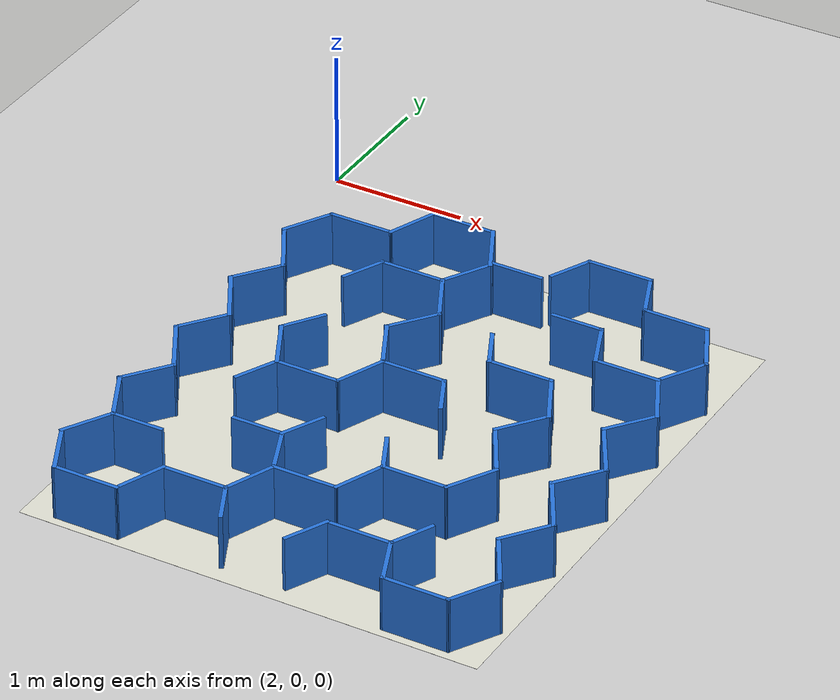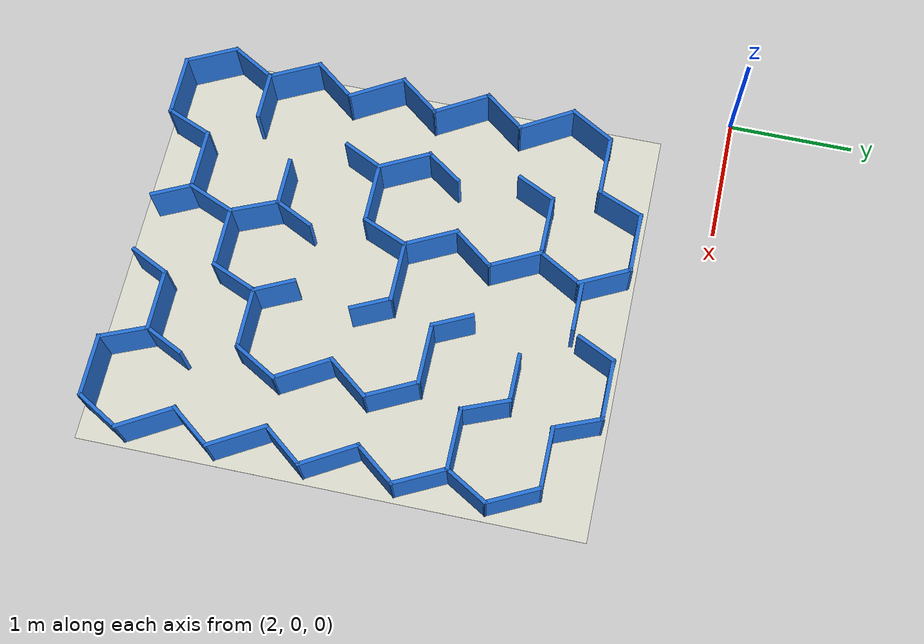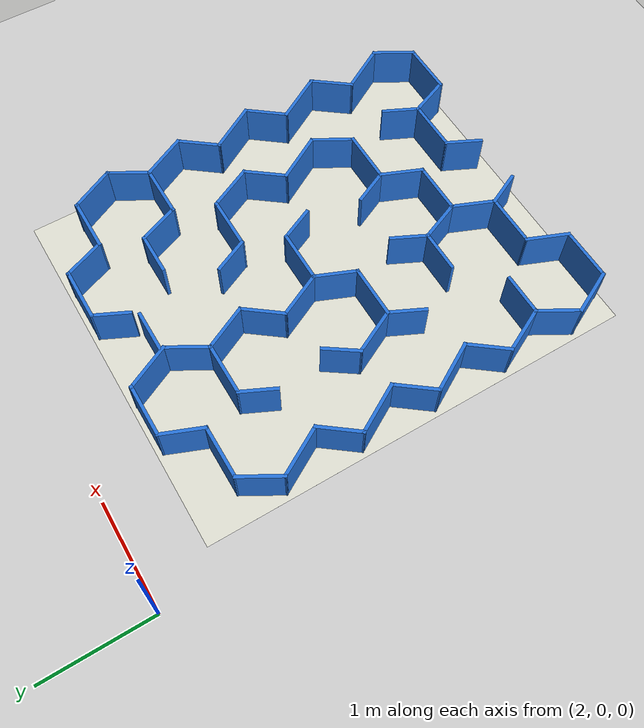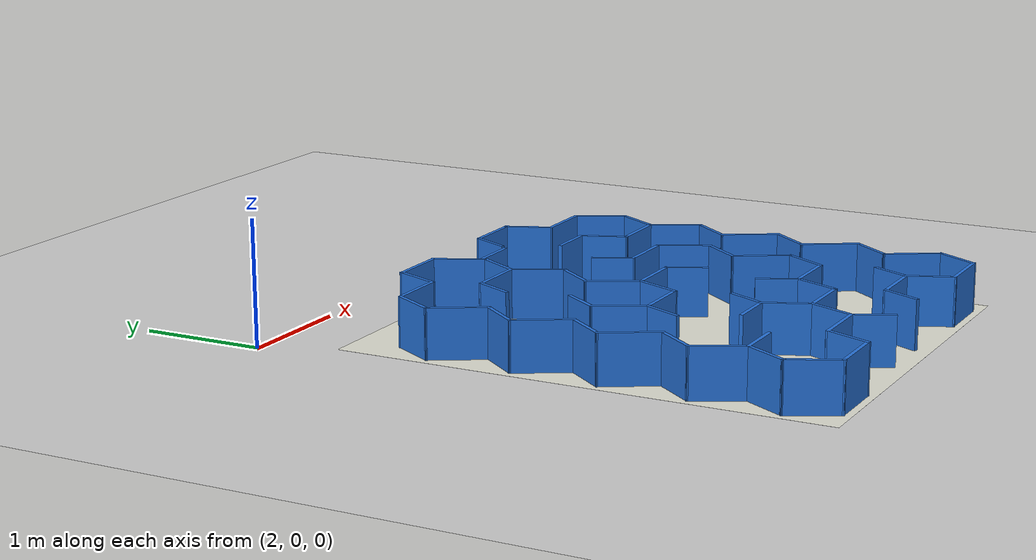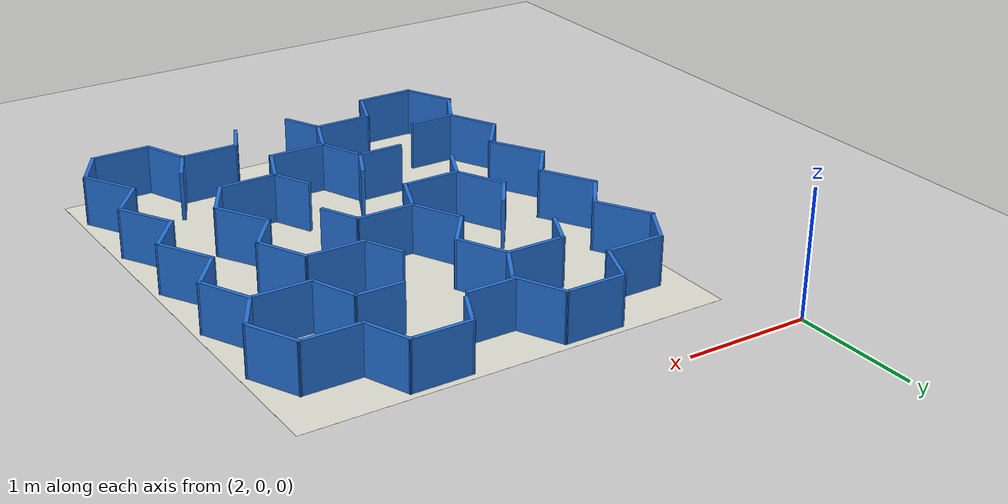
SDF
<?xml version="1.0" ?>
<sdf version="1.10">
<world name="nhom8_maze_sigma_1">
  <physics name="8ms" type="ignored">
    <max_step_size>0.008</max_step_size>
    <real_time_factor>1.0</real_time_factor>
  </physics>
  <plugin filename="gz-sim-physics-system"   name="gz::sim::systems::Physics"/>
  <plugin filename="gz-sim-user-commands-system" name="gz::sim::systems::UserCommands"/>
  <plugin filename="gz-sim-scene-broadcaster-system" name="gz::sim::systems::SceneBroadcaster"/>
  <plugin filename="gz-sim-sensors-system" name="gz::sim::systems::Sensors">
    <render_engine>ogre2</render_engine>
  </plugin>

  <light type="directional" name="sun">
    <cast_shadows>true</cast_shadows>
    <pose>0 0 10 0 0 0</pose>
    <diffuse>1 1 1 1</diffuse>
    <specular>0.5 0.5 0.5 1</specular>
    <attenuation><range>1000</range><constant>0.9</constant>
      <linear>0.01</linear><quadratic>0.001</quadratic></attenuation>
    <direction>-0.5 0.1 -0.9</direction>
  </light>

  <model name="ground_plane">
    <static>true</static>
    <link name="link">
      <collision name="collision">
        <geometry><plane><normal>0 0 1</normal><size>50.0 50.0</size></plane></geometry>
        <surface><friction><ode><mu>40</mu></ode></friction></surface>
      </collision>
      <visual name="visual">
        <geometry><plane><normal>0 0 1</normal><size>50.0 50.0</size></plane></geometry>
        <material>
          <ambient>0.8 0.8 0.8 1</ambient><diffuse>0.8 0.8 0.8 1</diffuse>
          <specular>0.8 0.8 0.8 1</specular>
        </material>
      </visual>
    </link>
  </model>

  <!--  MAZE sigma_1 (family sigma)                -->
  <!--  walls: 69   wall bbox (local): (-1.6468, -1.9402, 1.6477, 1.9489)   -->
  <!--  openings: entrance=north@(0.003,1.589) hw=0.168  exit=south@(0.003,-1.937) hw=0.168   -->
  <!--  start (local): (0.1032, 1.3098) yaw=-1.5724 rad  -->
  <!--  placement center: (3.9650, -2.5350)   -->

    <model name="wall_000">
      <static>true</static>
      <pose>3.355700 -0.600000 0.2000 0 0 0.000000</pose>
      <link name="link">
        <collision name="col">
          <geometry><box><size>0.4974 0.0300 0.4000</size></box></geometry>
        </collision>
        <visual name="vis">
          <geometry><box><size>0.4974 0.0300 0.4000</size></box></geometry>
          <material><ambient>0.15 0.45 0.85 1</ambient><diffuse>0.15 0.45 0.85 1</diffuse></material>
        </visual>
      </link>
    </model>

    <model name="wall_001">
      <static>true</static>
      <pose>4.574850 -0.600000 0.2000 0 0 0.000000</pose>
      <link name="link">
        <collision name="col">
          <geometry><box><size>0.4965 0.0300 0.4000</size></box></geometry>
        </collision>
        <visual name="vis">
          <geometry><box><size>0.4965 0.0300 0.4000</size></box></geometry>
          <material><ambient>0.15 0.45 0.85 1</ambient><diffuse>0.15 0.45 0.85 1</diffuse></material>
        </visual>
      </link>
    </model>

    <model name="wall_002">
      <static>true</static>
      <pose>2.749700 -0.949300 0.2000 0 0 0.000000</pose>
      <link name="link">
        <collision name="col">
          <geometry><box><size>0.4950 0.0300 0.4000</size></box></geometry>
        </collision>
        <visual name="vis">
          <geometry><box><size>0.4950 0.0300 0.4000</size></box></geometry>
          <material><ambient>0.15 0.45 0.85 1</ambient><diffuse>0.15 0.45 0.85 1</diffuse></material>
        </visual>
      </link>
    </model>

    <model name="wall_003">
      <static>true</static>
      <pose>5.182250 -0.949300 0.2000 0 0 0.000000</pose>
      <link name="link">
        <collision name="col">
          <geometry><box><size>0.4973 0.0300 0.4000</size></box></geometry>
        </collision>
        <visual name="vis">
          <geometry><box><size>0.4973 0.0300 0.4000</size></box></geometry>
          <material><ambient>0.15 0.45 0.85 1</ambient><diffuse>0.15 0.45 0.85 1</diffuse></material>
        </visual>
      </link>
    </model>

    <model name="wall_004">
      <static>true</static>
      <pose>3.355550 -1.303800 0.2000 0 0 0.000000</pose>
      <link name="link">
        <collision name="col">
          <geometry><box><size>0.4963 0.0300 0.4000</size></box></geometry>
        </collision>
        <visual name="vis">
          <geometry><box><size>0.4963 0.0300 0.4000</size></box></geometry>
          <material><ambient>0.15 0.45 0.85 1</ambient><diffuse>0.15 0.45 0.85 1</diffuse></material>
        </visual>
      </link>
    </model>

    <model name="wall_005">
      <static>true</static>
      <pose>4.626000 -1.303800 0.2000 0 0 0.000000</pose>
      <link name="link">
        <collision name="col">
          <geometry><box><size>0.3938 0.0300 0.4000</size></box></geometry>
        </collision>
        <visual name="vis">
          <geometry><box><size>0.3938 0.0300 0.4000</size></box></geometry>
          <material><ambient>0.15 0.45 0.85 1</ambient><diffuse>0.15 0.45 0.85 1</diffuse></material>
        </visual>
      </link>
    </model>

    <model name="wall_006">
      <static>true</static>
      <pose>5.180900 -1.650000 0.2000 0 0 0.000000</pose>
      <link name="link">
        <collision name="col">
          <geometry><box><size>0.4964 0.0300 0.4000</size></box></geometry>
        </collision>
        <visual name="vis">
          <geometry><box><size>0.4964 0.0300 0.4000</size></box></geometry>
          <material><ambient>0.15 0.45 0.85 1</ambient><diffuse>0.15 0.45 0.85 1</diffuse></material>
        </visual>
      </link>
    </model>

    <model name="wall_007">
      <static>true</static>
      <pose>4.574650 -2.004700 0.2000 0 0 0.000000</pose>
      <link name="link">
        <collision name="col">
          <geometry><box><size>0.4953 0.0300 0.4000</size></box></geometry>
        </collision>
        <visual name="vis">
          <geometry><box><size>0.4953 0.0300 0.4000</size></box></geometry>
          <material><ambient>0.15 0.45 0.85 1</ambient><diffuse>0.15 0.45 0.85 1</diffuse></material>
        </visual>
      </link>
    </model>

    <model name="wall_008">
      <static>true</static>
      <pose>3.966050 -2.359100 0.2000 0 0 0.000000</pose>
      <link name="link">
        <collision name="col">
          <geometry><box><size>0.4941 0.0300 0.4000</size></box></geometry>
        </collision>
        <visual name="vis">
          <geometry><box><size>0.4941 0.0300 0.4000</size></box></geometry>
          <material><ambient>0.15 0.45 0.85 1</ambient><diffuse>0.15 0.45 0.85 1</diffuse></material>
        </visual>
      </link>
    </model>

    <model name="wall_009">
      <static>true</static>
      <pose>3.358350 -2.705300 0.2000 0 0 0.000000</pose>
      <link name="link">
        <collision name="col">
          <geometry><box><size>0.4953 0.0300 0.4000</size></box></geometry>
        </collision>
        <visual name="vis">
          <geometry><box><size>0.4953 0.0300 0.4000</size></box></geometry>
          <material><ambient>0.15 0.45 0.85 1</ambient><diffuse>0.15 0.45 0.85 1</diffuse></material>
        </visual>
      </link>
    </model>

    <model name="wall_010">
      <static>true</static>
      <pose>3.405200 -3.410200 0.2000 0 0 0.000000</pose>
      <link name="link">
        <collision name="col">
          <geometry><box><size>0.3934 0.0300 0.4000</size></box></geometry>
        </collision>
        <visual name="vis">
          <geometry><box><size>0.3934 0.0300 0.4000</size></box></geometry>
          <material><ambient>0.15 0.45 0.85 1</ambient><diffuse>0.15 0.45 0.85 1</diffuse></material>
        </visual>
      </link>
    </model>

    <model name="wall_011">
      <static>true</static>
      <pose>4.575500 -3.410200 0.2000 0 0 0.000000</pose>
      <link name="link">
        <collision name="col">
          <geometry><box><size>0.4954 0.0300 0.4000</size></box></geometry>
        </collision>
        <visual name="vis">
          <geometry><box><size>0.4954 0.0300 0.4000</size></box></geometry>
          <material><ambient>0.15 0.45 0.85 1</ambient><diffuse>0.15 0.45 0.85 1</diffuse></material>
        </visual>
      </link>
    </model>

    <model name="wall_012">
      <static>true</static>
      <pose>2.698450 -3.760900 0.2000 0 0 0.000000</pose>
      <link name="link">
        <collision name="col">
          <geometry><box><size>0.3957 0.0300 0.4000</size></box></geometry>
        </collision>
        <visual name="vis">
          <geometry><box><size>0.3957 0.0300 0.4000</size></box></geometry>
          <material><ambient>0.15 0.45 0.85 1</ambient><diffuse>0.15 0.45 0.85 1</diffuse></material>
        </visual>
      </link>
    </model>

    <model name="wall_013">
      <static>true</static>
      <pose>3.966000 -3.760900 0.2000 0 0 0.000000</pose>
      <link name="link">
        <collision name="col">
          <geometry><box><size>0.4938 0.0300 0.4000</size></box></geometry>
        </collision>
        <visual name="vis">
          <geometry><box><size>0.4938 0.0300 0.4000</size></box></geometry>
          <material><ambient>0.15 0.45 0.85 1</ambient><diffuse>0.15 0.45 0.85 1</diffuse></material>
        </visual>
      </link>
    </model>

    <model name="wall_014">
      <static>true</static>
      <pose>3.355600 -4.115800 0.2000 0 0 0.000000</pose>
      <link name="link">
        <collision name="col">
          <geometry><box><size>0.4966 0.0300 0.4000</size></box></geometry>
        </collision>
        <visual name="vis">
          <geometry><box><size>0.4966 0.0300 0.4000</size></box></geometry>
          <material><ambient>0.15 0.45 0.85 1</ambient><diffuse>0.15 0.45 0.85 1</diffuse></material>
        </visual>
      </link>
    </model>

    <model name="wall_015">
      <static>true</static>
      <pose>4.573400 -4.115800 0.2000 0 0 0.000000</pose>
      <link name="link">
        <collision name="col">
          <geometry><box><size>0.4934 0.0300 0.4000</size></box></geometry>
        </collision>
        <visual name="vis">
          <geometry><box><size>0.4934 0.0300 0.4000</size></box></geometry>
          <material><ambient>0.15 0.45 0.85 1</ambient><diffuse>0.15 0.45 0.85 1</diffuse></material>
        </visual>
      </link>
    </model>

    <model name="wall_016">
      <static>true</static>
      <pose>2.747750 -4.461300 0.2000 0 0 0.000000</pose>
      <link name="link">
        <collision name="col">
          <geometry><box><size>0.4995 0.0300 0.4000</size></box></geometry>
        </collision>
        <visual name="vis">
          <geometry><box><size>0.4995 0.0300 0.4000</size></box></geometry>
          <material><ambient>0.15 0.45 0.85 1</ambient><diffuse>0.15 0.45 0.85 1</diffuse></material>
        </visual>
      </link>
    </model>

    <model name="wall_017">
      <static>true</static>
      <pose>5.182650 -4.461300 0.2000 0 0 0.000000</pose>
      <link name="link">
        <collision name="col">
          <geometry><box><size>0.4993 0.0300 0.4000</size></box></geometry>
        </collision>
        <visual name="vis">
          <geometry><box><size>0.4993 0.0300 0.4000</size></box></geometry>
          <material><ambient>0.15 0.45 0.85 1</ambient><diffuse>0.15 0.45 0.85 1</diffuse></material>
        </visual>
      </link>
    </model>

    <model name="wall_018">
      <static>true</static>
      <pose>5.508950 -1.138200 0.2000 0 0 -1.113098</pose>
      <link name="link">
        <collision name="col">
          <geometry><box><size>0.4510 0.0300 0.4000</size></box></geometry>
        </collision>
        <visual name="vis">
          <geometry><box><size>0.4510 0.0300 0.4000</size></box></geometry>
          <material><ambient>0.15 0.45 0.85 1</ambient><diffuse>0.15 0.45 0.85 1</diffuse></material>
        </visual>
      </link>
    </model>

    <model name="wall_019">
      <static>true</static>
      <pose>4.878350 -0.774700 0.2000 0 0 -1.188417</pose>
      <link name="link">
        <collision name="col">
          <geometry><box><size>0.4066 0.0300 0.4000</size></box></geometry>
        </collision>
        <visual name="vis">
          <geometry><box><size>0.4066 0.0300 0.4000</size></box></geometry>
          <material><ambient>0.15 0.45 0.85 1</ambient><diffuse>0.15 0.45 0.85 1</diffuse></material>
        </visual>
      </link>
    </model>

    <model name="wall_020">
      <static>true</static>
      <pose>5.508600 -1.840000 0.2000 0 0 -1.109117</pose>
      <link name="link">
        <collision name="col">
          <geometry><box><size>0.4544 0.0300 0.4000</size></box></geometry>
        </collision>
        <visual name="vis">
          <geometry><box><size>0.4544 0.0300 0.4000</size></box></geometry>
          <material><ambient>0.15 0.45 0.85 1</ambient><diffuse>0.15 0.45 0.85 1</diffuse></material>
        </visual>
      </link>
    </model>

    <model name="wall_021">
      <static>true</static>
      <pose>4.877850 -1.476900 0.2000 0 0 -1.186837</pose>
      <link name="link">
        <collision name="col">
          <geometry><box><size>0.4034 0.0300 0.4000</size></box></geometry>
        </collision>
        <visual name="vis">
          <geometry><box><size>0.4034 0.0300 0.4000</size></box></geometry>
          <material><ambient>0.15 0.45 0.85 1</ambient><diffuse>0.15 0.45 0.85 1</diffuse></material>
        </visual>
      </link>
    </model>

    <model name="wall_022">
      <static>true</static>
      <pose>5.487350 -2.532050 0.2000 0 0 -1.047161</pose>
      <link name="link">
        <collision name="col">
          <geometry><box><size>0.4946 0.0300 0.4000</size></box></geometry>
        </collision>
        <visual name="vis">
          <geometry><box><size>0.4946 0.0300 0.4000</size></box></geometry>
          <material><ambient>0.15 0.45 0.85 1</ambient><diffuse>0.15 0.45 0.85 1</diffuse></material>
        </visual>
      </link>
    </model>

    <model name="wall_023">
      <static>true</static>
      <pose>4.900650 -2.193100 0.2000 0 0 -1.111119</pose>
      <link name="link">
        <collision name="col">
          <geometry><box><size>0.4506 0.0300 0.4000</size></box></geometry>
        </collision>
        <visual name="vis">
          <geometry><box><size>0.4506 0.0300 0.4000</size></box></geometry>
          <material><ambient>0.15 0.45 0.85 1</ambient><diffuse>0.15 0.45 0.85 1</diffuse></material>
        </visual>
      </link>
    </model>

    <model name="wall_024">
      <static>true</static>
      <pose>5.486350 -3.234650 0.2000 0 0 -1.047161</pose>
      <link name="link">
        <collision name="col">
          <geometry><box><size>0.4946 0.0300 0.4000</size></box></geometry>
        </collision>
        <visual name="vis">
          <geometry><box><size>0.4946 0.0300 0.4000</size></box></geometry>
          <material><ambient>0.15 0.45 0.85 1</ambient><diffuse>0.15 0.45 0.85 1</diffuse></material>
        </visual>
      </link>
    </model>

    <model name="wall_025">
      <static>true</static>
      <pose>3.683050 -0.787650 0.2000 0 0 -1.107845</pose>
      <link name="link">
        <collision name="col">
          <geometry><box><size>0.4494 0.0300 0.4000</size></box></geometry>
        </collision>
        <visual name="vis">
          <geometry><box><size>0.4494 0.0300 0.4000</size></box></geometry>
          <material><ambient>0.15 0.45 0.85 1</ambient><diffuse>0.15 0.45 0.85 1</diffuse></material>
        </visual>
      </link>
    </model>

    <model name="wall_026">
      <static>true</static>
      <pose>4.273250 -1.860550 0.2000 0 0 -1.125971</pose>
      <link name="link">
        <collision name="col">
          <geometry><box><size>0.3493 0.0300 0.4000</size></box></geometry>
        </collision>
        <visual name="vis">
          <geometry><box><size>0.3493 0.0300 0.4000</size></box></geometry>
          <material><ambient>0.15 0.45 0.85 1</ambient><diffuse>0.15 0.45 0.85 1</diffuse></material>
        </visual>
      </link>
    </model>

    <model name="wall_027">
      <static>true</static>
      <pose>4.878100 -2.883000 0.2000 0 0 -1.047355</pose>
      <link name="link">
        <collision name="col">
          <geometry><box><size>0.4909 0.0300 0.4000</size></box></geometry>
        </collision>
        <visual name="vis">
          <geometry><box><size>0.4909 0.0300 0.4000</size></box></geometry>
          <material><ambient>0.15 0.45 0.85 1</ambient><diffuse>0.15 0.45 0.85 1</diffuse></material>
        </visual>
      </link>
    </model>

    <model name="wall_028">
      <static>true</static>
      <pose>5.487150 -3.937950 0.2000 0 0 -1.047171</pose>
      <link name="link">
        <collision name="col">
          <geometry><box><size>0.4902 0.0300 0.4000</size></box></geometry>
        </collision>
        <visual name="vis">
          <geometry><box><size>0.4902 0.0300 0.4000</size></box></geometry>
          <material><ambient>0.15 0.45 0.85 1</ambient><diffuse>0.15 0.45 0.85 1</diffuse></material>
        </visual>
      </link>
    </model>

    <model name="wall_029">
      <static>true</static>
      <pose>3.682300 -1.490750 0.2000 0 0 -1.106650</pose>
      <link name="link">
        <collision name="col">
          <geometry><box><size>0.4481 0.0300 0.4000</size></box></geometry>
        </collision>
        <visual name="vis">
          <geometry><box><size>0.4481 0.0300 0.4000</size></box></geometry>
          <material><ambient>0.15 0.45 0.85 1</ambient><diffuse>0.15 0.45 0.85 1</diffuse></material>
        </visual>
      </link>
    </model>

    <model name="wall_030">
      <static>true</static>
      <pose>4.266150 -2.501900 0.2000 0 0 -1.126514</pose>
      <link name="link">
        <collision name="col">
          <geometry><box><size>0.3464 0.0300 0.4000</size></box></geometry>
        </collision>
        <visual name="vis">
          <geometry><box><size>0.3464 0.0300 0.4000</size></box></geometry>
          <material><ambient>0.15 0.45 0.85 1</ambient><diffuse>0.15 0.45 0.85 1</diffuse></material>
        </visual>
      </link>
    </model>

    <model name="wall_031">
      <static>true</static>
      <pose>3.639650 -2.169200 0.2000 0 0 -1.109907</pose>
      <link name="link">
        <collision name="col">
          <geometry><box><size>0.4540 0.0300 0.4000</size></box></geometry>
        </collision>
        <visual name="vis">
          <geometry><box><size>0.4540 0.0300 0.4000</size></box></geometry>
          <material><ambient>0.15 0.45 0.85 1</ambient><diffuse>0.15 0.45 0.85 1</diffuse></material>
        </visual>
      </link>
    </model>

    <model name="wall_032">
      <static>true</static>
      <pose>4.273900 -3.266000 0.2000 0 0 -1.124803</pose>
      <link name="link">
        <collision name="col">
          <geometry><box><size>0.3496 0.0300 0.4000</size></box></geometry>
        </collision>
        <visual name="vis">
          <geometry><box><size>0.3496 0.0300 0.4000</size></box></geometry>
          <material><ambient>0.15 0.45 0.85 1</ambient><diffuse>0.15 0.45 0.85 1</diffuse></material>
        </visual>
      </link>
    </model>

    <model name="wall_033">
      <static>true</static>
      <pose>4.876500 -4.288500 0.2000 0 0 -1.178519</pose>
      <link name="link">
        <collision name="col">
          <geometry><box><size>0.4039 0.0300 0.4000</size></box></geometry>
        </collision>
        <visual name="vis">
          <geometry><box><size>0.4039 0.0300 0.4000</size></box></geometry>
          <material><ambient>0.15 0.45 0.85 1</ambient><diffuse>0.15 0.45 0.85 1</diffuse></material>
        </visual>
      </link>
    </model>

    <model name="wall_034">
      <static>true</static>
      <pose>2.444050 -1.478200 0.2000 0 0 -1.047233</pose>
      <link name="link">
        <collision name="col">
          <geometry><box><size>0.4914 0.0300 0.4000</size></box></geometry>
        </collision>
        <visual name="vis">
          <geometry><box><size>0.4914 0.0300 0.4000</size></box></geometry>
          <material><ambient>0.15 0.45 0.85 1</ambient><diffuse>0.15 0.45 0.85 1</diffuse></material>
        </visual>
      </link>
    </model>

    <model name="wall_035">
      <static>true</static>
      <pose>3.030700 -2.517650 0.2000 0 0 -1.102088</pose>
      <link name="link">
        <collision name="col">
          <geometry><box><size>0.4507 0.0300 0.4000</size></box></geometry>
        </collision>
        <visual name="vis">
          <geometry><box><size>0.4507 0.0300 0.4000</size></box></geometry>
          <material><ambient>0.15 0.45 0.85 1</ambient><diffuse>0.15 0.45 0.85 1</diffuse></material>
        </visual>
      </link>
    </model>

    <model name="wall_036">
      <static>true</static>
      <pose>3.660550 -3.585550 0.2000 0 0 -1.173137</pose>
      <link name="link">
        <collision name="col">
          <geometry><box><size>0.4103 0.0300 0.4000</size></box></geometry>
        </collision>
        <visual name="vis">
          <geometry><box><size>0.4103 0.0300 0.4000</size></box></geometry>
          <material><ambient>0.15 0.45 0.85 1</ambient><diffuse>0.15 0.45 0.85 1</diffuse></material>
        </visual>
      </link>
    </model>

    <model name="wall_037">
      <static>true</static>
      <pose>2.443350 -2.180250 0.2000 0 0 -1.047241</pose>
      <link name="link">
        <collision name="col">
          <geometry><box><size>0.4922 0.0300 0.4000</size></box></geometry>
        </collision>
        <visual name="vis">
          <geometry><box><size>0.4922 0.0300 0.4000</size></box></geometry>
          <material><ambient>0.15 0.45 0.85 1</ambient><diffuse>0.15 0.45 0.85 1</diffuse></material>
        </visual>
      </link>
    </model>

    <model name="wall_038">
      <static>true</static>
      <pose>3.657650 -4.259150 0.2000 0 0 -1.123473</pose>
      <link name="link">
        <collision name="col">
          <geometry><box><size>0.3479 0.0300 0.4000</size></box></geometry>
        </collision>
        <visual name="vis">
          <geometry><box><size>0.3479 0.0300 0.4000</size></box></geometry>
          <material><ambient>0.15 0.45 0.85 1</ambient><diffuse>0.15 0.45 0.85 1</diffuse></material>
        </visual>
      </link>
    </model>

    <model name="wall_039">
      <static>true</static>
      <pose>2.443200 -2.882950 0.2000 0 0 -1.047173</pose>
      <link name="link">
        <collision name="col">
          <geometry><box><size>0.4932 0.0300 0.4000</size></box></geometry>
        </collision>
        <visual name="vis">
          <geometry><box><size>0.4932 0.0300 0.4000</size></box></geometry>
          <material><ambient>0.15 0.45 0.85 1</ambient><diffuse>0.15 0.45 0.85 1</diffuse></material>
        </visual>
      </link>
    </model>

    <model name="wall_040">
      <static>true</static>
      <pose>2.421500 -3.572650 0.2000 0 0 -1.107248</pose>
      <link name="link">
        <collision name="col">
          <geometry><box><size>0.4509 0.0300 0.4000</size></box></geometry>
        </collision>
        <visual name="vis">
          <geometry><box><size>0.4509 0.0300 0.4000</size></box></geometry>
          <material><ambient>0.15 0.45 0.85 1</ambient><diffuse>0.15 0.45 0.85 1</diffuse></material>
        </visual>
      </link>
    </model>

    <model name="wall_041">
      <static>true</static>
      <pose>2.420900 -4.274850 0.2000 0 0 -1.112064</pose>
      <link name="link">
        <collision name="col">
          <geometry><box><size>0.4458 0.0300 0.4000</size></box></geometry>
        </collision>
        <visual name="vis">
          <geometry><box><size>0.4458 0.0300 0.4000</size></box></geometry>
          <material><ambient>0.15 0.45 0.85 1</ambient><diffuse>0.15 0.45 0.85 1</diffuse></material>
        </visual>
      </link>
    </model>

    <model name="wall_042">
      <static>true</static>
      <pose>5.509750 -4.299250 0.2000 0 0 1.052420</pose>
      <link name="link">
        <collision name="col">
          <geometry><box><size>0.4031 0.0300 0.4000</size></box></geometry>
        </collision>
        <visual name="vis">
          <geometry><box><size>0.4031 0.0300 0.4000</size></box></geometry>
          <material><ambient>0.15 0.45 0.85 1</ambient><diffuse>0.15 0.45 0.85 1</diffuse></material>
        </visual>
      </link>
    </model>

    <model name="wall_043">
      <static>true</static>
      <pose>5.487300 -3.587250 0.2000 0 0 0.920329</pose>
      <link name="link">
        <collision name="col">
          <geometry><box><size>0.4105 0.0300 0.4000</size></box></geometry>
        </collision>
        <visual name="vis">
          <geometry><box><size>0.4105 0.0300 0.4000</size></box></geometry>
          <material><ambient>0.15 0.45 0.85 1</ambient><diffuse>0.15 0.45 0.85 1</diffuse></material>
        </visual>
      </link>
    </model>

    <model name="wall_044">
      <static>true</static>
      <pose>5.486850 -2.883350 0.2000 0 0 0.910181</pose>
      <link name="link">
        <collision name="col">
          <geometry><box><size>0.4102 0.0300 0.4000</size></box></geometry>
        </collision>
        <visual name="vis">
          <geometry><box><size>0.4102 0.0300 0.4000</size></box></geometry>
          <material><ambient>0.15 0.45 0.85 1</ambient><diffuse>0.15 0.45 0.85 1</diffuse></material>
        </visual>
      </link>
    </model>

    <model name="wall_045">
      <static>true</static>
      <pose>4.874200 -3.970600 0.2000 0 0 1.126475</pose>
      <link name="link">
        <collision name="col">
          <geometry><box><size>0.3518 0.0300 0.4000</size></box></geometry>
        </collision>
        <visual name="vis">
          <geometry><box><size>0.3518 0.0300 0.4000</size></box></geometry>
          <material><ambient>0.15 0.45 0.85 1</ambient><diffuse>0.15 0.45 0.85 1</diffuse></material>
        </visual>
      </link>
    </model>

    <model name="wall_046">
      <static>true</static>
      <pose>5.487200 -2.180450 0.2000 0 0 0.914268</pose>
      <link name="link">
        <collision name="col">
          <geometry><box><size>0.4099 0.0300 0.4000</size></box></geometry>
        </collision>
        <visual name="vis">
          <geometry><box><size>0.4099 0.0300 0.4000</size></box></geometry>
          <material><ambient>0.15 0.45 0.85 1</ambient><diffuse>0.15 0.45 0.85 1</diffuse></material>
        </visual>
      </link>
    </model>

    <model name="wall_047">
      <static>true</static>
      <pose>4.900750 -3.246350 0.2000 0 0 1.056382</pose>
      <link name="link">
        <collision name="col">
          <geometry><box><size>0.4063 0.0300 0.4000</size></box></geometry>
        </collision>
        <visual name="vis">
          <geometry><box><size>0.4063 0.0300 0.4000</size></box></geometry>
          <material><ambient>0.15 0.45 0.85 1</ambient><diffuse>0.15 0.45 0.85 1</diffuse></material>
        </visual>
      </link>
    </model>

    <model name="wall_048">
      <static>true</static>
      <pose>4.272800 -4.259250 0.2000 0 0 1.123463</pose>
      <link name="link">
        <collision name="col">
          <geometry><box><size>0.3482 0.0300 0.4000</size></box></geometry>
        </collision>
        <visual name="vis">
          <geometry><box><size>0.3482 0.0300 0.4000</size></box></geometry>
          <material><ambient>0.15 0.45 0.85 1</ambient><diffuse>0.15 0.45 0.85 1</diffuse></material>
        </visual>
      </link>
    </model>

    <model name="wall_049">
      <static>true</static>
      <pose>5.508050 -1.488550 0.2000 0 0 1.044059</pose>
      <link name="link">
        <collision name="col">
          <geometry><box><size>0.4036 0.0300 0.4000</size></box></geometry>
        </collision>
        <visual name="vis">
          <geometry><box><size>0.4036 0.0300 0.4000</size></box></geometry>
          <material><ambient>0.15 0.45 0.85 1</ambient><diffuse>0.15 0.45 0.85 1</diffuse></material>
        </visual>
      </link>
    </model>

    <model name="wall_050">
      <static>true</static>
      <pose>4.878350 -2.532450 0.2000 0 0 0.917494</pose>
      <link name="link">
        <collision name="col">
          <geometry><box><size>0.4102 0.0300 0.4000</size></box></geometry>
        </collision>
        <visual name="vis">
          <geometry><box><size>0.4102 0.0300 0.4000</size></box></geometry>
          <material><ambient>0.15 0.45 0.85 1</ambient><diffuse>0.15 0.45 0.85 1</diffuse></material>
        </visual>
      </link>
    </model>

    <model name="wall_051">
      <static>true</static>
      <pose>4.270350 -3.585500 0.2000 0 0 1.179087</pose>
      <link name="link">
        <collision name="col">
          <geometry><box><size>0.4094 0.0300 0.4000</size></box></geometry>
        </collision>
        <visual name="vis">
          <geometry><box><size>0.4094 0.0300 0.4000</size></box></geometry>
          <material><ambient>0.15 0.45 0.85 1</ambient><diffuse>0.15 0.45 0.85 1</diffuse></material>
        </visual>
      </link>
    </model>

    <model name="wall_052">
      <static>true</static>
      <pose>3.661500 -3.938350 0.2000 0 0 1.182386</pose>
      <link name="link">
        <collision name="col">
          <geometry><box><size>0.4135 0.0300 0.4000</size></box></geometry>
        </collision>
        <visual name="vis">
          <geometry><box><size>0.4135 0.0300 0.4000</size></box></geometry>
          <material><ambient>0.15 0.45 0.85 1</ambient><diffuse>0.15 0.45 0.85 1</diffuse></material>
        </visual>
      </link>
    </model>

    <model name="wall_053">
      <static>true</static>
      <pose>3.656450 -3.266300 0.2000 0 0 1.120708</pose>
      <link name="link">
        <collision name="col">
          <geometry><box><size>0.3496 0.0300 0.4000</size></box></geometry>
        </collision>
        <visual name="vis">
          <geometry><box><size>0.3496 0.0300 0.4000</size></box></geometry>
          <material><ambient>0.15 0.45 0.85 1</ambient><diffuse>0.15 0.45 0.85 1</diffuse></material>
        </visual>
      </link>
    </model>

    <model name="wall_054">
      <static>true</static>
      <pose>3.052400 -4.288550 0.2000 0 0 1.186416</pose>
      <link name="link">
        <collision name="col">
          <geometry><box><size>0.4027 0.0300 0.4000</size></box></geometry>
        </collision>
        <visual name="vis">
          <geometry><box><size>0.4027 0.0300 0.4000</size></box></geometry>
          <material><ambient>0.15 0.45 0.85 1</ambient><diffuse>0.15 0.45 0.85 1</diffuse></material>
        </visual>
      </link>
    </model>

    <model name="wall_055">
      <static>true</static>
      <pose>3.662500 -2.532200 0.2000 0 0 1.179275</pose>
      <link name="link">
        <collision name="col">
          <geometry><box><size>0.4046 0.0300 0.4000</size></box></geometry>
        </collision>
        <visual name="vis">
          <geometry><box><size>0.4046 0.0300 0.4000</size></box></geometry>
          <material><ambient>0.15 0.45 0.85 1</ambient><diffuse>0.15 0.45 0.85 1</diffuse></material>
        </visual>
      </link>
    </model>

    <model name="wall_056">
      <static>true</static>
      <pose>4.273300 -0.743650 0.2000 0 0 1.126550</pose>
      <link name="link">
        <collision name="col">
          <geometry><box><size>0.3481 0.0300 0.4000</size></box></geometry>
        </collision>
        <visual name="vis">
          <geometry><box><size>0.3481 0.0300 0.4000</size></box></geometry>
          <material><ambient>0.15 0.45 0.85 1</ambient><diffuse>0.15 0.45 0.85 1</diffuse></material>
        </visual>
      </link>
    </model>

    <model name="wall_057">
      <static>true</static>
      <pose>3.660600 -1.828500 0.2000 0 0 0.918315</pose>
      <link name="link">
        <collision name="col">
          <geometry><box><size>0.4098 0.0300 0.4000</size></box></geometry>
        </collision>
        <visual name="vis">
          <geometry><box><size>0.4098 0.0300 0.4000</size></box></geometry>
          <material><ambient>0.15 0.45 0.85 1</ambient><diffuse>0.15 0.45 0.85 1</diffuse></material>
        </visual>
      </link>
    </model>

    <model name="wall_058">
      <static>true</static>
      <pose>3.056500 -2.850700 0.2000 0 0 1.126963</pose>
      <link name="link">
        <collision name="col">
          <geometry><box><size>0.3521 0.0300 0.4000</size></box></geometry>
        </collision>
        <visual name="vis">
          <geometry><box><size>0.3521 0.0300 0.4000</size></box></geometry>
          <material><ambient>0.15 0.45 0.85 1</ambient><diffuse>0.15 0.45 0.85 1</diffuse></material>
        </visual>
      </link>
    </model>

    <model name="wall_059">
      <static>true</static>
      <pose>2.422200 -3.924650 0.2000 0 0 1.052504</pose>
      <link name="link">
        <collision name="col">
          <geometry><box><size>0.4069 0.0300 0.4000</size></box></geometry>
        </collision>
        <visual name="vis">
          <geometry><box><size>0.4069 0.0300 0.4000</size></box></geometry>
          <material><ambient>0.15 0.45 0.85 1</ambient><diffuse>0.15 0.45 0.85 1</diffuse></material>
        </visual>
      </link>
    </model>

    <model name="wall_060">
      <static>true</static>
      <pose>3.682750 -1.139550 0.2000 0 0 1.050952</pose>
      <link name="link">
        <collision name="col">
          <geometry><box><size>0.4085 0.0300 0.4000</size></box></geometry>
        </collision>
        <visual name="vis">
          <geometry><box><size>0.4085 0.0300 0.4000</size></box></geometry>
          <material><ambient>0.15 0.45 0.85 1</ambient><diffuse>0.15 0.45 0.85 1</diffuse></material>
        </visual>
      </link>
    </model>

    <model name="wall_061">
      <static>true</static>
      <pose>3.026400 -2.198950 0.2000 0 0 0.965451</pose>
      <link name="link">
        <collision name="col">
          <geometry><box><size>0.3487 0.0300 0.4000</size></box></geometry>
        </collision>
        <visual name="vis">
          <geometry><box><size>0.3487 0.0300 0.4000</size></box></geometry>
          <material><ambient>0.15 0.45 0.85 1</ambient><diffuse>0.15 0.45 0.85 1</diffuse></material>
        </visual>
      </link>
    </model>

    <model name="wall_062">
      <static>true</static>
      <pose>2.443200 -3.234000 0.2000 0 0 0.914505</pose>
      <link name="link">
        <collision name="col">
          <geometry><box><size>0.4097 0.0300 0.4000</size></box></geometry>
        </collision>
        <visual name="vis">
          <geometry><box><size>0.4097 0.0300 0.4000</size></box></geometry>
          <material><ambient>0.15 0.45 0.85 1</ambient><diffuse>0.15 0.45 0.85 1</diffuse></material>
        </visual>
      </link>
    </model>

    <model name="wall_063">
      <static>true</static>
      <pose>3.055000 -1.446850 0.2000 0 0 1.130277</pose>
      <link name="link">
        <collision name="col">
          <geometry><box><size>0.3461 0.0300 0.4000</size></box></geometry>
        </collision>
        <visual name="vis">
          <geometry><box><size>0.3461 0.0300 0.4000</size></box></geometry>
          <material><ambient>0.15 0.45 0.85 1</ambient><diffuse>0.15 0.45 0.85 1</diffuse></material>
        </visual>
      </link>
    </model>

    <model name="wall_064">
      <static>true</static>
      <pose>2.443200 -2.531400 0.2000 0 0 0.916675</pose>
      <link name="link">
        <collision name="col">
          <geometry><box><size>0.4105 0.0300 0.4000</size></box></geometry>
        </collision>
        <visual name="vis">
          <geometry><box><size>0.4105 0.0300 0.4000</size></box></geometry>
          <material><ambient>0.15 0.45 0.85 1</ambient><diffuse>0.15 0.45 0.85 1</diffuse></material>
        </visual>
      </link>
    </model>

    <model name="wall_065">
      <static>true</static>
      <pose>3.052050 -0.774700 0.2000 0 0 1.190244</pose>
      <link name="link">
        <collision name="col">
          <geometry><box><size>0.4063 0.0300 0.4000</size></box></geometry>
        </collision>
        <visual name="vis">
          <geometry><box><size>0.4063 0.0300 0.4000</size></box></geometry>
          <material><ambient>0.15 0.45 0.85 1</ambient><diffuse>0.15 0.45 0.85 1</diffuse></material>
        </visual>
      </link>
    </model>

    <model name="wall_066">
      <static>true</static>
      <pose>2.443600 -1.829050 0.2000 0 0 0.916823</pose>
      <link name="link">
        <collision name="col">
          <geometry><box><size>0.4106 0.0300 0.4000</size></box></geometry>
        </collision>
        <visual name="vis">
          <geometry><box><size>0.4106 0.0300 0.4000</size></box></geometry>
          <material><ambient>0.15 0.45 0.85 1</ambient><diffuse>0.15 0.45 0.85 1</diffuse></material>
        </visual>
      </link>
    </model>

    <model name="wall_067">
      <static>true</static>
      <pose>2.422950 -1.113850 0.2000 0 0 1.050832</pose>
      <link name="link">
        <collision name="col">
          <geometry><box><size>0.4092 0.0300 0.4000</size></box></geometry>
        </collision>
        <visual name="vis">
          <geometry><box><size>0.4092 0.0300 0.4000</size></box></geometry>
          <material><ambient>0.15 0.45 0.85 1</ambient><diffuse>0.15 0.45 0.85 1</diffuse></material>
        </visual>
      </link>
    </model>

    <model name="wall_068">
      <static>true</static>
      <pose>3.967900 -0.946500 0.2000 0 0 0.000000</pose>
      <link name="link">
        <collision name="col">
          <geometry><box><size>0.3966 0.0300 0.4000</size></box></geometry>
        </collision>
        <visual name="vis">
          <geometry><box><size>0.3966 0.0300 0.4000</size></box></geometry>
          <material><ambient>0.15 0.45 0.85 1</ambient><diffuse>0.15 0.45 0.85 1</diffuse></material>
        </visual>
      </link>
    </model>

    <model name="floor">
      <static>true</static>
      <pose>3.965000 -2.535000 -0.02 0 0 0</pose>
      <link name="link">
        <collision name="col">
          <geometry><box><size>3.3945 3.9891 0.03</size></box></geometry>
        </collision>
        <visual name="vis">
          <geometry><box><size>3.3945 3.9891 0.03</size></box></geometry>
          <material><ambient>0.87 0.87 0.82 1</ambient><diffuse>0.87 0.87 0.82 1</diffuse></material>
        </visual>
      </link>
    </model>
</world>
</sdf>
